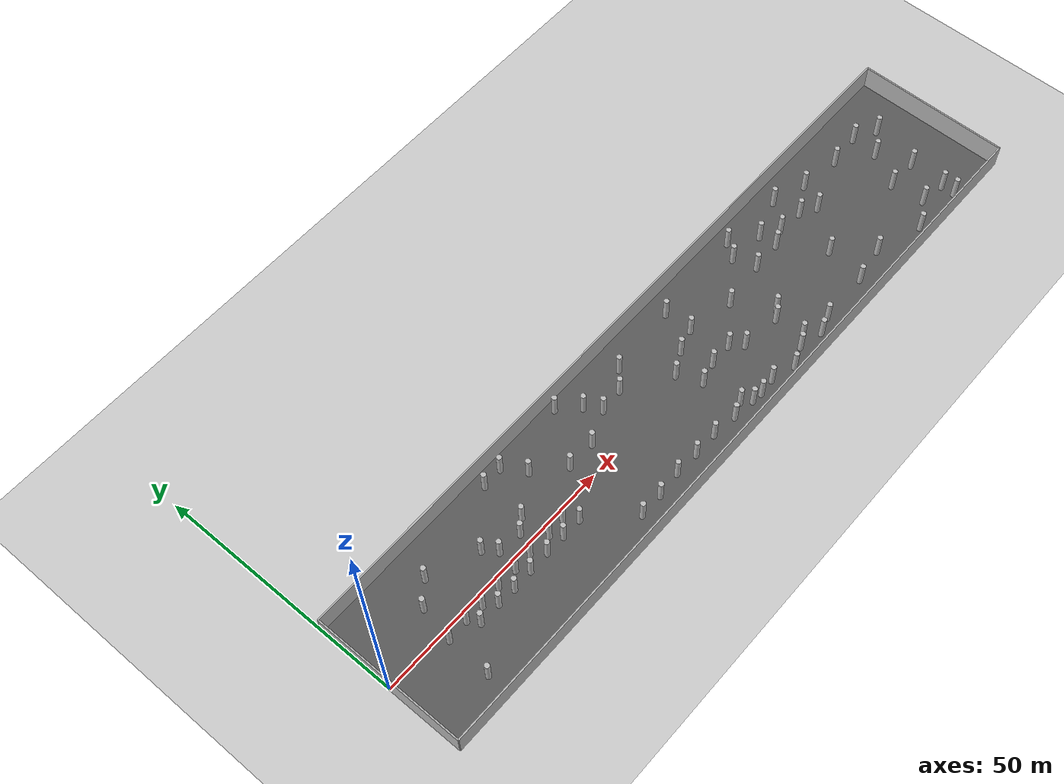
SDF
<?xml version="1.0" ?>
<sdf version="1.5">
  <world name="default">
    <plugin name="gazebo_ros_state" filename="libgazebo_ros_state.so">
      <ros>
        <namespace>/gazebo</namespace>
      </ros>
      <update_rate>20.0</update_rate>
    </plugin>

    <include><uri>model://sun</uri></include>
    <include><uri>model://ground_plane</uri></include>

    <model name="corridor_floor">
      <static>true</static>
      <pose>75 0 0.01 0 0 0</pose>
      <link name="link">
        <collision name="collision">
          <geometry><box><size>150 30 0.02</size></box></geometry>
        </collision>
        <visual name="visual">
          <geometry><box><size>150 30 0.02</size></box></geometry>
          <material>
            <ambient>0.25 0.25 0.25 1</ambient>
            <diffuse>0.35 0.35 0.35 1</diffuse>
          </material>
        </visual>
      </link>
    </model>

    <physics name="default_physics" default="0" type="ode">
      <gravity>0 0 -9.8066</gravity>
      <ode>
        <solver>
          <type>quick</type>
          <iters>10</iters>
          <sor>1.3</sor>
          <use_dynamic_moi_rescaling>0</use_dynamic_moi_rescaling>
        </solver>
        <constraints>
          <cfm>0</cfm>
          <erp>0.2</erp>
          <contact_max_correcting_vel>100</contact_max_correcting_vel>
          <contact_surface_layer>0.001</contact_surface_layer>
        </constraints>
      </ode>
      <max_step_size>0.004</max_step_size>
      <real_time_factor>1</real_time_factor>
      <real_time_update_rate>250</real_time_update_rate>
      <magnetic_field>6.0e-6 2.3e-5 -4.2e-5</magnetic_field>
    </physics>

    <model name="left_wall">
      <static>true</static>
      <pose>75 15.15 2.5 0 0 0</pose>
      <link name="link">
        <collision name="collision">
          <geometry><box><size>150 0.3 5</size></box></geometry>
        </collision>
        <visual name="visual">
          <geometry><box><size>150 0.3 5</size></box></geometry>
        </visual>
      </link>
    </model>

    <model name="right_wall">
      <static>true</static>
      <pose>75 -15.15 2.5 0 0 0</pose>
      <link name="link">
        <collision name="collision">
          <geometry><box><size>150 0.3 5</size></box></geometry>
        </collision>
        <visual name="visual">
          <geometry><box><size>150 0.3 5</size></box></geometry>
        </visual>
      </link>
    </model>

    <model name="start_wall">
      <static>true</static>
      <pose>0 0 2.5 0 0 0</pose>
      <link name="link">
        <collision name="collision">
          <geometry><box><size>0.3 30.3 5</size></box></geometry>
        </collision>
        <visual name="visual">
          <geometry><box><size>0.3 30.3 5</size></box></geometry>
        </visual>
      </link>
    </model>

    <model name="end_wall">
      <static>true</static>
      <pose>150 0 2.5 0 0 0</pose>
      <link name="link">
        <collision name="collision">
          <geometry><box><size>0.3 30.3 5</size></box></geometry>
        </collision>
        <visual name="visual">
          <geometry><box><size>0.3 30.3 5</size></box></geometry>
        </visual>
      </link>
    </model>

    <include><name>cylinder_000</name><uri>model://cylinder_r05_h5</uri><pose>17.529 -3.616 2.5 0 0 0</pose></include>
    <include><name>cylinder_001</name><uri>model://cylinder_r05_h5</uri><pose>16.273 -1.575 2.5 0 0 0</pose></include>
    <include><name>cylinder_002</name><uri>model://cylinder_r05_h5</uri><pose>21.844 -3.577 2.5 0 0 0</pose></include>
    <include><name>cylinder_003</name><uri>model://cylinder_r05_h5</uri><pose>19.868 -1.807 2.5 0 0 0</pose></include>
    <include><name>cylinder_004</name><uri>model://cylinder_r05_h5</uri><pose>25.492 -3.788 2.5 0 0 0</pose></include>
    <include><name>cylinder_005</name><uri>model://cylinder_r05_h5</uri><pose>24.058 -1.547 2.5 0 0 0</pose></include>
    <include><name>cylinder_006</name><uri>model://cylinder_r05_h5</uri><pose>29.560 -3.692 2.5 0 0 0</pose></include>
    <include><name>cylinder_007</name><uri>model://cylinder_r05_h5</uri><pose>28.084 -1.656 2.5 0 0 0</pose></include>
    <include><name>cylinder_008</name><uri>model://cylinder_r05_h5</uri><pose>33.793 -3.629 2.5 0 0 0</pose></include>
    <include><name>cylinder_009</name><uri>model://cylinder_r05_h5</uri><pose>31.801 -1.564 2.5 0 0 0</pose></include>
    <include><name>cylinder_010</name><uri>model://cylinder_r05_h5</uri><pose>37.786 -3.699 2.5 0 0 0</pose></include>
    <include><name>cylinder_011</name><uri>model://cylinder_r05_h5</uri><pose>36.337 -1.798 2.5 0 0 0</pose></include>
    <include><name>cylinder_012</name><uri>model://cylinder_r05_h5</uri><pose>41.797 -3.786 2.5 0 0 0</pose></include>
    <include><name>cylinder_013</name><uri>model://cylinder_r05_h5</uri><pose>40.088 -1.523 2.5 0 0 0</pose></include>
    <include><name>cylinder_014</name><uri>model://cylinder_r05_h5</uri><pose>49.326 -11.218 2.5 0 0 0</pose></include>
    <include><name>cylinder_015</name><uri>model://cylinder_r05_h5</uri><pose>54.069 -11.192 2.5 0 0 0</pose></include>
    <include><name>cylinder_016</name><uri>model://cylinder_r05_h5</uri><pose>59.184 -10.742 2.5 0 0 0</pose></include>
    <include><name>cylinder_017</name><uri>model://cylinder_r05_h5</uri><pose>64.085 -10.958 2.5 0 0 0</pose></include>
    <include><name>cylinder_018</name><uri>model://cylinder_r05_h5</uri><pose>69.074 -10.917 2.5 0 0 0</pose></include>
    <include><name>cylinder_019</name><uri>model://cylinder_r05_h5</uri><pose>74.201 -11.465 2.5 0 0 0</pose></include>
    <include><name>cylinder_020</name><uri>model://cylinder_r05_h5</uri><pose>97.801 -12.712 2.5 0 0 0</pose></include>
    <include><name>cylinder_021</name><uri>model://cylinder_r05_h5</uri><pose>86.854 -3.972 2.5 0 0 0</pose></include>
    <include><name>cylinder_022</name><uri>model://cylinder_r05_h5</uri><pose>80.083 -1.931 2.5 0 0 0</pose></include>
    <include><name>cylinder_023</name><uri>model://cylinder_r05_h5</uri><pose>78.721 -11.932 2.5 0 0 0</pose></include>
    <include><name>cylinder_024</name><uri>model://cylinder_r05_h5</uri><pose>75.939 -3.133 2.5 0 0 0</pose></include>
    <include><name>cylinder_025</name><uri>model://cylinder_r05_h5</uri><pose>84.755 -1.809 2.5 0 0 0</pose></include>
    <include><name>cylinder_026</name><uri>model://cylinder_r05_h5</uri><pose>84.266 -11.826 2.5 0 0 0</pose></include>
    <include><name>cylinder_027</name><uri>model://cylinder_r05_h5</uri><pose>94.760 -4.792 2.5 0 0 0</pose></include>
    <include><name>cylinder_028</name><uri>model://cylinder_r05_h5</uri><pose>77.082 -10.353 2.5 0 0 0</pose></include>
    <include><name>cylinder_029</name><uri>model://cylinder_r05_h5</uri><pose>96.549 -3.530 2.5 0 0 0</pose></include>
    <include><name>cylinder_030</name><uri>model://cylinder_r05_h5</uri><pose>93.020 -11.599 2.5 0 0 0</pose></include>
    <include><name>cylinder_031</name><uri>model://cylinder_r05_h5</uri><pose>80.945 -12.121 2.5 0 0 0</pose></include>
    <include><name>cylinder_032</name><uri>model://cylinder_r05_h5</uri><pose>101.081 -11.586 2.5 0 0 0</pose></include>
    <include><name>cylinder_033</name><uri>model://cylinder_r05_h5</uri><pose>95.073 -10.483 2.5 0 0 0</pose></include>
    <include><name>cylinder_034</name><uri>model://cylinder_r05_h5</uri><pose>89.057 -13.231 2.5 0 0 0</pose></include>
    <include><name>cylinder_035</name><uri>model://cylinder_r05_h5</uri><pose>112.869 -3.402 2.5 0 0 0</pose></include>
    <include><name>cylinder_036</name><uri>model://cylinder_r05_h5</uri><pose>128.273 -12.930 2.5 0 0 0</pose></include>
    <include><name>cylinder_037</name><uri>model://cylinder_r05_h5</uri><pose>133.513 -9.977 2.5 0 0 0</pose></include>
    <include><name>cylinder_038</name><uri>model://cylinder_r05_h5</uri><pose>118.663 -10.015 2.5 0 0 0</pose></include>
    <include><name>cylinder_039</name><uri>model://cylinder_r05_h5</uri><pose>111.522 -11.288 2.5 0 0 0</pose></include>
    <include><name>cylinder_040</name><uri>model://cylinder_r05_h5</uri><pose>132.795 -3.377 2.5 0 0 0</pose></include>
    <include><name>cylinder_041</name><uri>model://cylinder_r05_h5</uri><pose>12.073 -1.727 2.5 0 0 0</pose></include>
    <include><name>cylinder_042</name><uri>model://cylinder_r05_h5</uri><pose>11.742 -10.424 2.5 0 0 0</pose></include>
    <include><name>cylinder_043</name><uri>model://cylinder_r05_h5</uri><pose>139.115 -3.416 2.5 0 0 0</pose></include>
    <include><name>cylinder_044</name><uri>model://cylinder_r05_h5</uri><pose>138.734 -10.655 2.5 0 0 0</pose></include>
    <include><name>cylinder_045</name><uri>model://cylinder_r05_h5</uri><pose>138.790 -13.313 2.5 0 0 0</pose></include>
    <include><name>cylinder_046</name><uri>model://cylinder_r05_h5</uri><pose>102.185 12.029 2.5 0 0 0</pose></include>
    <include><name>cylinder_047</name><uri>model://cylinder_r05_h5</uri><pose>116.171 5.908 2.5 0 0 0</pose></include>
    <include><name>cylinder_048</name><uri>model://cylinder_r05_h5</uri><pose>65.235 7.081 2.5 0 0 0</pose></include>
    <include><name>cylinder_049</name><uri>model://cylinder_r05_h5</uri><pose>17.320 8.598 2.5 0 0 0</pose></include>
    <include><name>cylinder_050</name><uri>model://cylinder_r05_h5</uri><pose>82.848 10.945 2.5 0 0 0</pose></include>
    <include><name>cylinder_051</name><uri>model://cylinder_r05_h5</uri><pose>55.026 13.227 2.5 0 0 0</pose></include>
    <include><name>cylinder_052</name><uri>model://cylinder_r05_h5</uri><pose>107.275 8.446 2.5 0 0 0</pose></include>
    <include><name>cylinder_053</name><uri>model://cylinder_r05_h5</uri><pose>40.317 12.708 2.5 0 0 0</pose></include>
    <include><name>cylinder_054</name><uri>model://cylinder_r05_h5</uri><pose>100.033 9.107 2.5 0 0 0</pose></include>
    <include><name>cylinder_055</name><uri>model://cylinder_r05_h5</uri><pose>35.881 3.878 2.5 0 0 0</pose></include>
    <include><name>cylinder_056</name><uri>model://cylinder_r05_h5</uri><pose>36.213 12.519 2.5 0 0 0</pose></include>
    <include><name>cylinder_057</name><uri>model://cylinder_r05_h5</uri><pose>68.523 9.914 2.5 0 0 0</pose></include>
    <include><name>cylinder_058</name><uri>model://cylinder_r05_h5</uri><pose>48.341 3.923 2.5 0 0 0</pose></include>
    <include><name>cylinder_059</name><uri>model://cylinder_r05_h5</uri><pose>136.652 3.189 2.5 0 0 0</pose></include>
    <include><name>cylinder_060</name><uri>model://cylinder_r05_h5</uri><pose>141.475 6.253 2.5 0 0 0</pose></include>
    <include><name>cylinder_061</name><uri>model://cylinder_r05_h5</uri><pose>13.308 5.112 2.5 0 0 0</pose></include>
    <include><name>cylinder_062</name><uri>model://cylinder_r05_h5</uri><pose>110.899 6.364 2.5 0 0 0</pose></include>
    <include><name>cylinder_063</name><uri>model://cylinder_r05_h5</uri><pose>28.771 2.431 2.5 0 0 0</pose></include>
    <include><name>cylinder_064</name><uri>model://cylinder_r05_h5</uri><pose>58.537 9.635 2.5 0 0 0</pose></include>
    <include><name>cylinder_065</name><uri>model://cylinder_r05_h5</uri><pose>26.982 4.910 2.5 0 0 0</pose></include>
    <include><name>cylinder_066</name><uri>model://cylinder_r05_h5</uri><pose>83.006 5.406 2.5 0 0 0</pose></include>
    <include><name>cylinder_067</name><uri>model://cylinder_r05_h5</uri><pose>101.434 4.628 2.5 0 0 0</pose></include>
    <include><name>cylinder_068</name><uri>model://cylinder_r05_h5</uri><pose>107.624 4.927 2.5 0 0 0</pose></include>
    <include><name>cylinder_069</name><uri>model://cylinder_r05_h5</uri><pose>121.898 9.030 2.5 0 0 0</pose></include>
    <include><name>cylinder_070</name><uri>model://cylinder_r05_h5</uri><pose>130.238 8.023 2.5 0 0 0</pose></include>
    <include><name>cylinder_071</name><uri>model://cylinder_r05_h5</uri><pose>54.063 3.905 2.5 0 0 0</pose></include>
    <include><name>cylinder_072</name><uri>model://cylinder_r05_h5</uri><pose>92.109 3.504 2.5 0 0 0</pose></include>
    <include><name>cylinder_073</name><uri>model://cylinder_r05_h5</uri><pose>60.402 6.695 2.5 0 0 0</pose></include>
    <include><name>cylinder_074</name><uri>model://cylinder_r05_h5</uri><pose>136.985 8.585 2.5 0 0 0</pose></include>
    <include><name>cylinder_075</name><uri>model://cylinder_r05_h5</uri><pose>119.438 4.150 2.5 0 0 0</pose></include>
    <include><name>cylinder_076</name><uri>model://cylinder_r05_h5</uri><pose>33.460 2.023 2.5 0 0 0</pose></include>
    <include><name>cylinder_077</name><uri>model://cylinder_r05_h5</uri><pose>42.963 8.514 2.5 0 0 0</pose></include>
    <include><name>cylinder_078</name><uri>model://cylinder_r05_h5</uri><pose>74.030 1.554 2.5 0 0 0</pose></include>
    <include><name>cylinder_079</name><uri>model://cylinder_r05_h5</uri><pose>115.180 11.218 2.5 0 0 0</pose></include>
    <include><name>cylinder_080</name><uri>model://cylinder_r05_h5</uri><pose>78.433 3.946 2.5 0 0 0</pose></include>

  </world>
</sdf>

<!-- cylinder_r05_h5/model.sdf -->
<sdf version="1.5">
  <model name="cylinder_r05_h5">
    <static>true</static>
    <link name="link">
      <collision name="collision">
        <geometry>
          <cylinder>
            <radius>0.5</radius>
            <length>5</length>
          </cylinder>
        </geometry>
      </collision>
      <visual name="visual">
        <geometry>
          <cylinder>
            <radius>0.5</radius>
            <length>5</length>
          </cylinder>
        </geometry>
        <material>
          <ambient>0.5 0.5 0.5 1</ambient>
          <diffuse>0.75 0.75 0.75 1</diffuse>
        </material>
      </visual>
    </link>
  </model>
</sdf>
